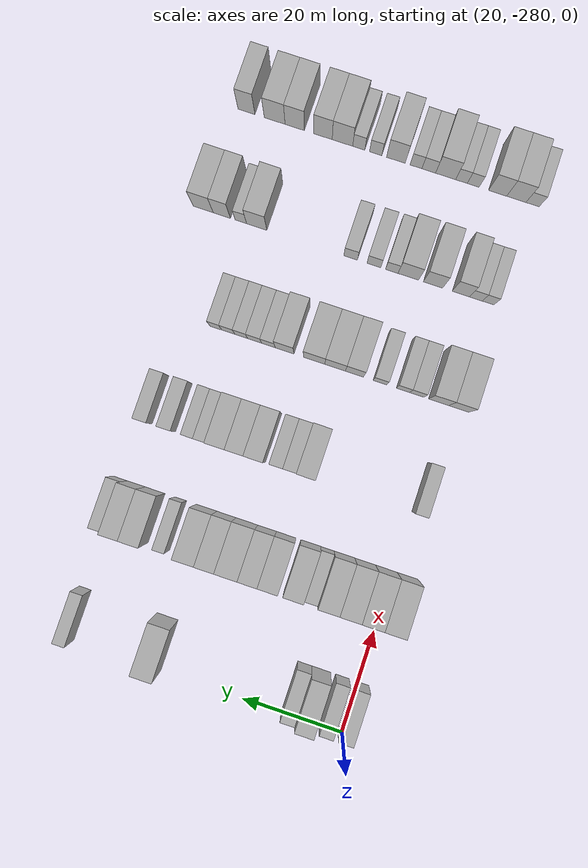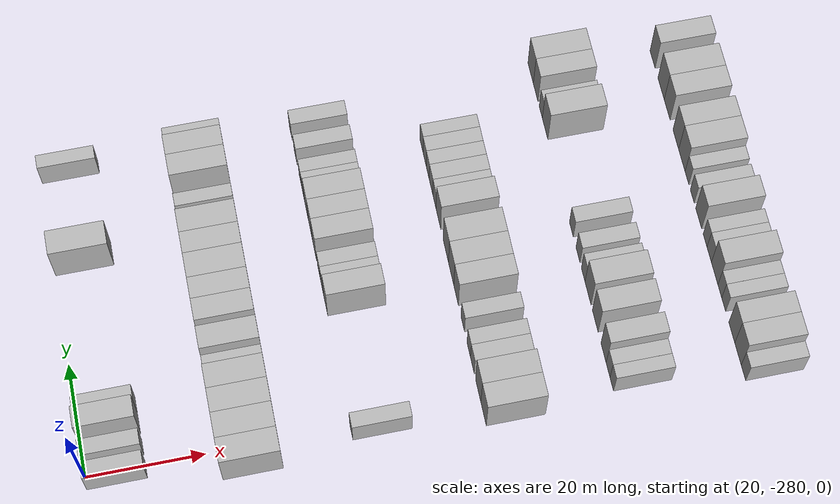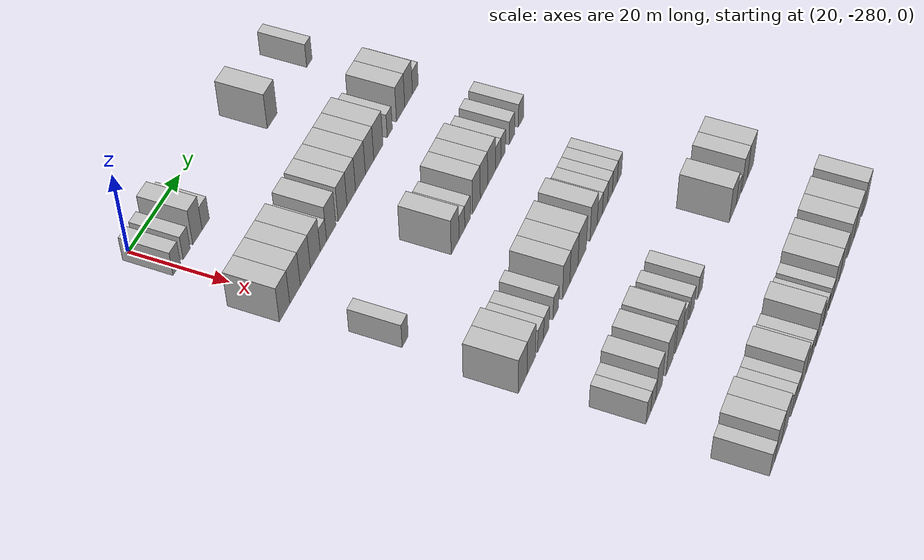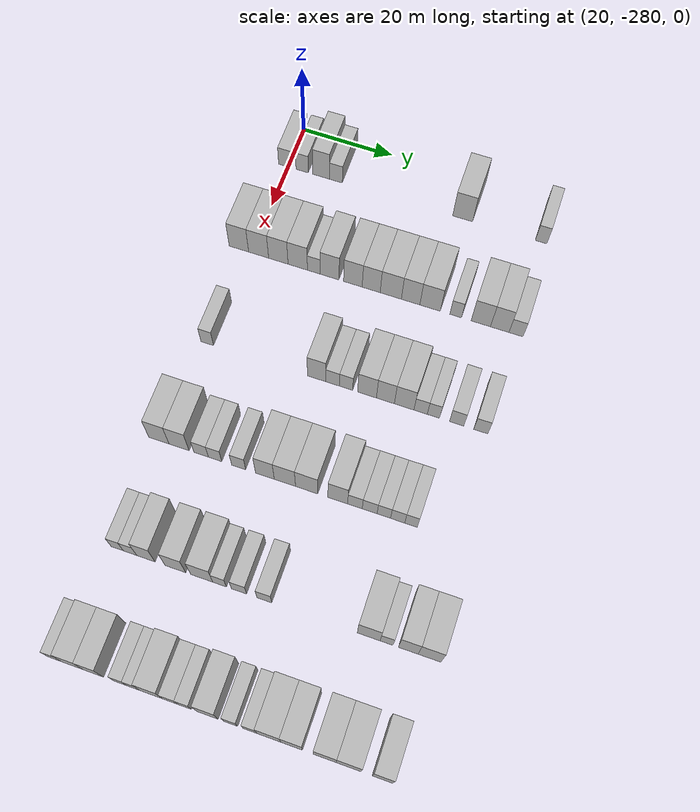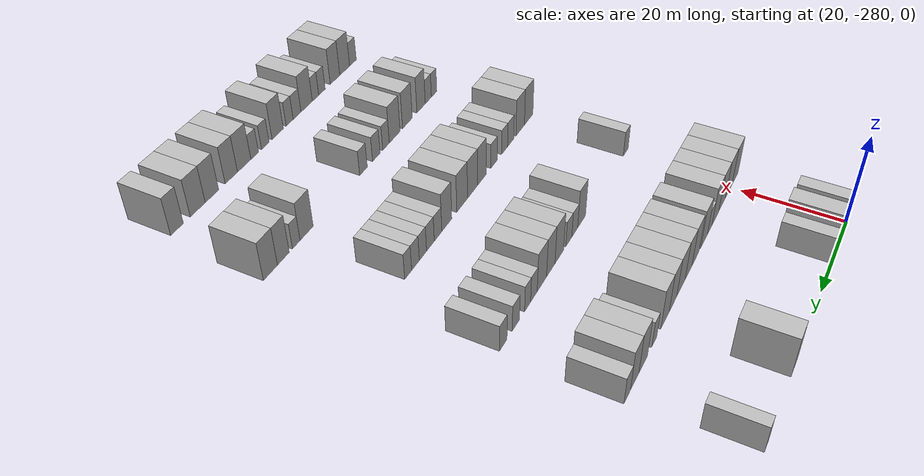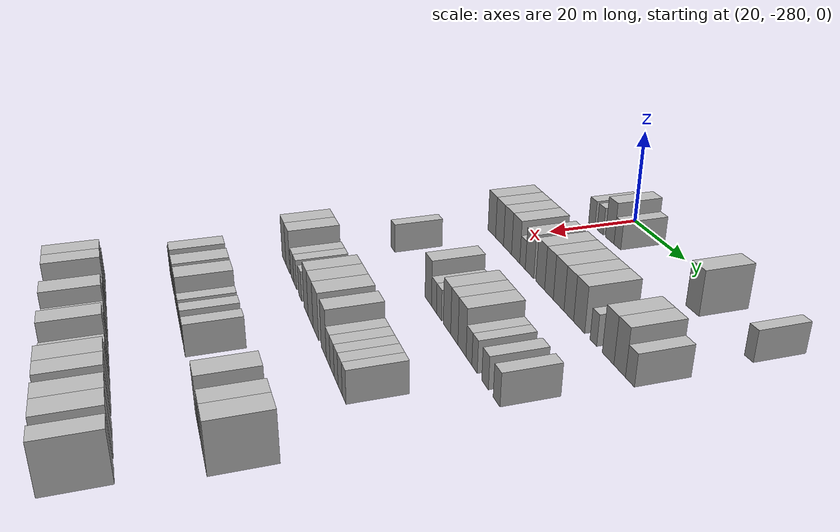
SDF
<sdf version="1.6">
 <world name="default">
  <model name="building_29">
   <static>1</static>
   <pose>25.0000 -280.6863 0 0.000000 0.000000 0.000000</pose>
   <link name="link">
    <pose>0 0 3.00 0 0 0</pose>
    <collision name="collision"><geometry><box><size>10.0000 2.9296 6.0000</size></box></geometry></collision>
    <visual name="visual">
     <cast_shadows>0</cast_shadows>
     <geometry><box><size>10.0000 2.9296 6.0000</size></box></geometry>
     <material>
      <script>
       <uri>model://HANNAS_wall/materials/scripts</uri>
       <uri>model://HANNAS_wall/materials/textures</uri>
       <name>vrc/HANNAS_wall</name>
      </script>
     </material>
    </visual>
   </link>
  </model>
  <model name="building_30">
   <static>1</static>
   <pose>25.0000 -276.8398 0 0.000000 0.000000 0.000000</pose>
   <link name="link">
    <pose>0 0 3.00 0 0 0</pose>
    <collision name="collision"><geometry><box><size>10.0000 2.7635 6.0000</size></box></geometry></collision>
    <visual name="visual">
     <cast_shadows>0</cast_shadows>
     <geometry><box><size>10.0000 2.7635 6.0000</size></box></geometry>
     <material>
      <script>
       <uri>model://HANNAS_wall/materials/scripts</uri>
       <uri>model://HANNAS_wall/materials/textures</uri>
       <name>vrc/HANNAS_wall</name>
      </script>
     </material>
    </visual>
   </link>
  </model>
  <model name="building_31">
   <static>1</static>
   <pose>25.0000 -272.5830 0 0.000000 0.000000 0.000000</pose>
   <link name="link">
    <pose>0 0 4.50 0 0 0</pose>
    <collision name="collision"><geometry><box><size>10.0000 3.7500 9.0000</size></box></geometry></collision>
    <visual name="visual">
     <cast_shadows>0</cast_shadows>
     <geometry><box><size>10.0000 3.7500 9.0000</size></box></geometry>
     <material>
      <script>
       <uri>model://HANNAS_wall/materials/scripts</uri>
       <uri>model://HANNAS_wall/materials/textures</uri>
       <name>vrc/HANNAS_wall</name>
      </script>
     </material>
    </visual>
   </link>
  </model>
  <model name="building_32">
   <static>1</static>
   <pose>25.0000 -269.2646 0 0.000000 0.000000 0.000000</pose>
   <link name="link">
    <pose>0 0 3.00 0 0 0</pose>
    <collision name="collision"><geometry><box><size>10.0000 2.8869 6.0000</size></box></geometry></collision>
    <visual name="visual">
     <cast_shadows>0</cast_shadows>
     <geometry><box><size>10.0000 2.8869 6.0000</size></box></geometry>
     <material>
      <script>
       <uri>model://HANNAS_wall/materials/scripts</uri>
       <uri>model://HANNAS_wall/materials/textures</uri>
       <name>vrc/HANNAS_wall</name>
      </script>
     </material>
    </visual>
   </link>
  </model>
  <model name="building_33">
   <static>1</static>
   <pose>25.0000 -241.3336 0 0.000000 0.000000 0.000000</pose>
   <link name="link">
    <pose>0 0 4.50 0 0 0</pose>
    <collision name="collision"><geometry><box><size>10.0000 4.3250 9.0000</size></box></geometry></collision>
    <visual name="visual">
     <cast_shadows>0</cast_shadows>
     <geometry><box><size>10.0000 4.3250 9.0000</size></box></geometry>
     <material>
      <script>
       <uri>model://HANNAS_wall/materials/scripts</uri>
       <uri>model://HANNAS_wall/materials/textures</uri>
       <name>vrc/HANNAS_wall</name>
      </script>
     </material>
    </visual>
   </link>
  </model>
  <model name="building_34">
   <static>1</static>
   <pose>25.0000 -224.4694 0 0.000000 0.000000 0.000000</pose>
   <link name="link">
    <pose>0 0 3.00 0 0 0</pose>
    <collision name="collision"><geometry><box><size>10.0000 2.4678 6.0000</size></box></geometry></collision>
    <visual name="visual">
     <cast_shadows>0</cast_shadows>
     <geometry><box><size>10.0000 2.4678 6.0000</size></box></geometry>
     <material>
      <script>
       <uri>model://HANNAS_wall/materials/scripts</uri>
       <uri>model://HANNAS_wall/materials/textures</uri>
       <name>vrc/HANNAS_wall</name>
      </script>
     </material>
    </visual>
   </link>
  </model>
  <model name="building_210">
   <static>1</static>
   <pose>47.0000 -282.8100 0 0.000000 0.000000 0.000000</pose>
   <link name="link">
    <pose>0 0 4.50 0 0 0</pose>
    <collision name="collision"><geometry><box><size>10.0000 4.2675 9.0000</size></box></geometry></collision>
    <visual name="visual">
     <cast_shadows>0</cast_shadows>
     <geometry><box><size>10.0000 4.2675 9.0000</size></box></geometry>
     <material>
      <script>
       <uri>model://HANNAS_wall/materials/scripts</uri>
       <uri>model://HANNAS_wall/materials/textures</uri>
       <name>vrc/HANNAS_wall</name>
      </script>
     </material>
    </visual>
   </link>
  </model>
  <model name="building_211">
   <static>1</static>
   <pose>47.0000 -278.4864 0 0.000000 0.000000 0.000000</pose>
   <link name="link">
    <pose>0 0 4.50 0 0 0</pose>
    <collision name="collision"><geometry><box><size>10.0000 4.3796 9.0000</size></box></geometry></collision>
    <visual name="visual">
     <cast_shadows>0</cast_shadows>
     <geometry><box><size>10.0000 4.3796 9.0000</size></box></geometry>
     <material>
      <script>
       <uri>model://HANNAS_wall/materials/scripts</uri>
       <uri>model://HANNAS_wall/materials/textures</uri>
       <name>vrc/HANNAS_wall</name>
      </script>
     </material>
    </visual>
   </link>
  </model>
  <model name="building_212">
   <static>1</static>
   <pose>47.0000 -274.1787 0 0.000000 0.000000 0.000000</pose>
   <link name="link">
    <pose>0 0 4.50 0 0 0</pose>
    <collision name="collision"><geometry><box><size>10.0000 4.2359 9.0000</size></box></geometry></collision>
    <visual name="visual">
     <cast_shadows>0</cast_shadows>
     <geometry><box><size>10.0000 4.2359 9.0000</size></box></geometry>
     <material>
      <script>
       <uri>model://HANNAS_wall/materials/scripts</uri>
       <uri>model://HANNAS_wall/materials/textures</uri>
       <name>vrc/HANNAS_wall</name>
      </script>
     </material>
    </visual>
   </link>
  </model>
  <model name="building_213">
   <static>1</static>
   <pose>47.0000 -269.9558 0 0.000000 0.000000 0.000000</pose>
   <link name="link">
    <pose>0 0 4.50 0 0 0</pose>
    <collision name="collision"><geometry><box><size>10.0000 4.2099 9.0000</size></box></geometry></collision>
    <visual name="visual">
     <cast_shadows>0</cast_shadows>
     <geometry><box><size>10.0000 4.2099 9.0000</size></box></geometry>
     <material>
      <script>
       <uri>model://HANNAS_wall/materials/scripts</uri>
       <uri>model://HANNAS_wall/materials/textures</uri>
       <name>vrc/HANNAS_wall</name>
      </script>
     </material>
    </visual>
   </link>
  </model>
  <model name="building_214">
   <static>1</static>
   <pose>47.0000 -266.4868 0 0.000000 0.000000 0.000000</pose>
   <link name="link">
    <pose>0 0 3.00 0 0 0</pose>
    <collision name="collision"><geometry><box><size>10.0000 2.7280 6.0000</size></box></geometry></collision>
    <visual name="visual">
     <cast_shadows>0</cast_shadows>
     <geometry><box><size>10.0000 2.7280 6.0000</size></box></geometry>
     <material>
      <script>
       <uri>model://HANNAS_wall/materials/scripts</uri>
       <uri>model://HANNAS_wall/materials/textures</uri>
       <name>vrc/HANNAS_wall</name>
      </script>
     </material>
    </visual>
   </link>
  </model>
  <model name="building_215">
   <static>1</static>
   <pose>47.0000 -263.0918 0 0.000000 0.000000 0.000000</pose>
   <link name="link">
    <pose>0 0 4.50 0 0 0</pose>
    <collision name="collision"><geometry><box><size>10.0000 4.0620 9.0000</size></box></geometry></collision>
    <visual name="visual">
     <cast_shadows>0</cast_shadows>
     <geometry><box><size>10.0000 4.0620 9.0000</size></box></geometry>
     <material>
      <script>
       <uri>model://HANNAS_wall/materials/scripts</uri>
       <uri>model://HANNAS_wall/materials/textures</uri>
       <name>vrc/HANNAS_wall</name>
      </script>
     </material>
    </visual>
   </link>
  </model>
  <model name="building_216">
   <static>1</static>
   <pose>47.0000 -258.0781 0 0.000000 0.000000 0.000000</pose>
   <link name="link">
    <pose>0 0 4.50 0 0 0</pose>
    <collision name="collision"><geometry><box><size>10.0000 3.9655 9.0000</size></box></geometry></collision>
    <visual name="visual">
     <cast_shadows>0</cast_shadows>
     <geometry><box><size>10.0000 3.9655 9.0000</size></box></geometry>
     <material>
      <script>
       <uri>model://HANNAS_wall/materials/scripts</uri>
       <uri>model://HANNAS_wall/materials/textures</uri>
       <name>vrc/HANNAS_wall</name>
      </script>
     </material>
    </visual>
   </link>
  </model>
  <model name="building_217">
   <static>1</static>
   <pose>47.0000 -254.1682 0 0.000000 0.000000 0.000000</pose>
   <link name="link">
    <pose>0 0 4.50 0 0 0</pose>
    <collision name="collision"><geometry><box><size>10.0000 3.8542 9.0000</size></box></geometry></collision>
    <visual name="visual">
     <cast_shadows>0</cast_shadows>
     <geometry><box><size>10.0000 3.8542 9.0000</size></box></geometry>
     <material>
      <script>
       <uri>model://HANNAS_wall/materials/scripts</uri>
       <uri>model://HANNAS_wall/materials/textures</uri>
       <name>vrc/HANNAS_wall</name>
      </script>
     </material>
    </visual>
   </link>
  </model>
  <model name="building_218">
   <static>1</static>
   <pose>47.0000 -249.9914 0 0.000000 0.000000 0.000000</pose>
   <link name="link">
    <pose>0 0 4.50 0 0 0</pose>
    <collision name="collision"><geometry><box><size>10.0000 4.4993 9.0000</size></box></geometry></collision>
    <visual name="visual">
     <cast_shadows>0</cast_shadows>
     <geometry><box><size>10.0000 4.4993 9.0000</size></box></geometry>
     <material>
      <script>
       <uri>model://HANNAS_wall/materials/scripts</uri>
       <uri>model://HANNAS_wall/materials/textures</uri>
       <name>vrc/HANNAS_wall</name>
      </script>
     </material>
    </visual>
   </link>
  </model>
  <model name="building_219">
   <static>1</static>
   <pose>47.0000 -245.7836 0 0.000000 0.000000 0.000000</pose>
   <link name="link">
    <pose>0 0 4.50 0 0 0</pose>
    <collision name="collision"><geometry><box><size>10.0000 3.9164 9.0000</size></box></geometry></collision>
    <visual name="visual">
     <cast_shadows>0</cast_shadows>
     <geometry><box><size>10.0000 3.9164 9.0000</size></box></geometry>
     <material>
      <script>
       <uri>model://HANNAS_wall/materials/scripts</uri>
       <uri>model://HANNAS_wall/materials/textures</uri>
       <name>vrc/HANNAS_wall</name>
      </script>
     </material>
    </visual>
   </link>
  </model>
  <model name="building_220">
   <static>1</static>
   <pose>47.0000 -241.6746 0 0.000000 0.000000 0.000000</pose>
   <link name="link">
    <pose>0 0 4.50 0 0 0</pose>
    <collision name="collision"><geometry><box><size>10.0000 4.3015 9.0000</size></box></geometry></collision>
    <visual name="visual">
     <cast_shadows>0</cast_shadows>
     <geometry><box><size>10.0000 4.3015 9.0000</size></box></geometry>
     <material>
      <script>
       <uri>model://HANNAS_wall/materials/scripts</uri>
       <uri>model://HANNAS_wall/materials/textures</uri>
       <name>vrc/HANNAS_wall</name>
      </script>
     </material>
    </visual>
   </link>
  </model>
  <model name="building_221">
   <static>1</static>
   <pose>47.0000 -236.3030 0 0.000000 0.000000 0.000000</pose>
   <link name="link">
    <pose>0 0 3.00 0 0 0</pose>
    <collision name="collision"><geometry><box><size>10.0000 2.4418 6.0000</size></box></geometry></collision>
    <visual name="visual">
     <cast_shadows>0</cast_shadows>
     <geometry><box><size>10.0000 2.4418 6.0000</size></box></geometry>
     <material>
      <script>
       <uri>model://HANNAS_wall/materials/scripts</uri>
       <uri>model://HANNAS_wall/materials/textures</uri>
       <name>vrc/HANNAS_wall</name>
      </script>
     </material>
    </visual>
   </link>
  </model>
  <model name="building_222">
   <static>1</static>
   <pose>47.0000 -231.0691 0 0.000000 0.000000 0.000000</pose>
   <link name="link">
    <pose>0 0 4.50 0 0 0</pose>
    <collision name="collision"><geometry><box><size>10.0000 4.0259 9.0000</size></box></geometry></collision>
    <visual name="visual">
     <cast_shadows>0</cast_shadows>
     <geometry><box><size>10.0000 4.0259 9.0000</size></box></geometry>
     <material>
      <script>
       <uri>model://HANNAS_wall/materials/scripts</uri>
       <uri>model://HANNAS_wall/materials/textures</uri>
       <name>vrc/HANNAS_wall</name>
      </script>
     </material>
    </visual>
   </link>
  </model>
  <model name="building_223">
   <static>1</static>
   <pose>47.0000 -227.1420 0 0.000000 0.000000 0.000000</pose>
   <link name="link">
    <pose>0 0 4.50 0 0 0</pose>
    <collision name="collision"><geometry><box><size>10.0000 3.8282 9.0000</size></box></geometry></collision>
    <visual name="visual">
     <cast_shadows>0</cast_shadows>
     <geometry><box><size>10.0000 3.8282 9.0000</size></box></geometry>
     <material>
      <script>
       <uri>model://HANNAS_wall/materials/scripts</uri>
       <uri>model://HANNAS_wall/materials/textures</uri>
       <name>vrc/HANNAS_wall</name>
      </script>
     </material>
    </visual>
   </link>
  </model>
  <model name="building_224">
   <static>1</static>
   <pose>47.0000 -223.7814 0 0.000000 0.000000 0.000000</pose>
   <link name="link">
    <pose>0 0 3.00 0 0 0</pose>
    <collision name="collision"><geometry><box><size>10.0000 2.8931 6.0000</size></box></geometry></collision>
    <visual name="visual">
     <cast_shadows>0</cast_shadows>
     <geometry><box><size>10.0000 2.8931 6.0000</size></box></geometry>
     <material>
      <script>
       <uri>model://HANNAS_wall/materials/scripts</uri>
       <uri>model://HANNAS_wall/materials/textures</uri>
       <name>vrc/HANNAS_wall</name>
      </script>
     </material>
    </visual>
   </link>
  </model>
  <model name="building_400">
   <static>1</static>
   <pose>69.0000 -281.1554 0 0.000000 0.000000 0.000000</pose>
   <link name="link">
    <pose>0 0 3.00 0 0 0</pose>
    <collision name="collision"><geometry><box><size>10.0000 2.6811 6.0000</size></box></geometry></collision>
    <visual name="visual">
     <cast_shadows>0</cast_shadows>
     <geometry><box><size>10.0000 2.6811 6.0000</size></box></geometry>
     <material>
      <script>
       <uri>model://HANNAS_wall/materials/scripts</uri>
       <uri>model://HANNAS_wall/materials/textures</uri>
       <name>vrc/HANNAS_wall</name>
      </script>
     </material>
    </visual>
   </link>
  </model>
  <model name="building_401">
   <static>1</static>
   <pose>69.0000 -258.1409 0 0.000000 0.000000 0.000000</pose>
   <link name="link">
    <pose>0 0 4.50 0 0 0</pose>
    <collision name="collision"><geometry><box><size>10.0000 3.7827 9.0000</size></box></geometry></collision>
    <visual name="visual">
     <cast_shadows>0</cast_shadows>
     <geometry><box><size>10.0000 3.7827 9.0000</size></box></geometry>
     <material>
      <script>
       <uri>model://HANNAS_wall/materials/scripts</uri>
       <uri>model://HANNAS_wall/materials/textures</uri>
       <name>vrc/HANNAS_wall</name>
      </script>
     </material>
    </visual>
   </link>
  </model>
  <model name="building_402">
   <static>1</static>
   <pose>69.0000 -254.8541 0 0.000000 0.000000 0.000000</pose>
   <link name="link">
    <pose>0 0 3.00 0 0 0</pose>
    <collision name="collision"><geometry><box><size>10.0000 2.7908 6.0000</size></box></geometry></collision>
    <visual name="visual">
     <cast_shadows>0</cast_shadows>
     <geometry><box><size>10.0000 2.7908 6.0000</size></box></geometry>
     <material>
      <script>
       <uri>model://HANNAS_wall/materials/scripts</uri>
       <uri>model://HANNAS_wall/materials/textures</uri>
       <name>vrc/HANNAS_wall</name>
      </script>
     </material>
    </visual>
   </link>
  </model>
  <model name="building_403">
   <static>1</static>
   <pose>69.0000 -252.0815 0 0.000000 0.000000 0.000000</pose>
   <link name="link">
    <pose>0 0 3.00 0 0 0</pose>
    <collision name="collision"><geometry><box><size>10.0000 2.7545 6.0000</size></box></geometry></collision>
    <visual name="visual">
     <cast_shadows>0</cast_shadows>
     <geometry><box><size>10.0000 2.7545 6.0000</size></box></geometry>
     <material>
      <script>
       <uri>model://HANNAS_wall/materials/scripts</uri>
       <uri>model://HANNAS_wall/materials/textures</uri>
       <name>vrc/HANNAS_wall</name>
      </script>
     </material>
    </visual>
   </link>
  </model>
  <model name="building_404">
   <static>1</static>
   <pose>69.0000 -247.7672 0 0.000000 0.000000 0.000000</pose>
   <link name="link">
    <pose>0 0 4.50 0 0 0</pose>
    <collision name="collision"><geometry><box><size>10.0000 3.8741 9.0000</size></box></geometry></collision>
    <visual name="visual">
     <cast_shadows>0</cast_shadows>
     <geometry><box><size>10.0000 3.8741 9.0000</size></box></geometry>
     <material>
      <script>
       <uri>model://HANNAS_wall/materials/scripts</uri>
       <uri>model://HANNAS_wall/materials/textures</uri>
       <name>vrc/HANNAS_wall</name>
      </script>
     </material>
    </visual>
   </link>
  </model>
  <model name="building_405">
   <static>1</static>
   <pose>69.0000 -243.9930 0 0.000000 0.000000 0.000000</pose>
   <link name="link">
    <pose>0 0 4.50 0 0 0</pose>
    <collision name="collision"><geometry><box><size>10.0000 3.6743 9.0000</size></box></geometry></collision>
    <visual name="visual">
     <cast_shadows>0</cast_shadows>
     <geometry><box><size>10.0000 3.6743 9.0000</size></box></geometry>
     <material>
      <script>
       <uri>model://HANNAS_wall/materials/scripts</uri>
       <uri>model://HANNAS_wall/materials/textures</uri>
       <name>vrc/HANNAS_wall</name>
      </script>
     </material>
    </visual>
   </link>
  </model>
  <model name="building_406">
   <static>1</static>
   <pose>69.0000 -240.1670 0 0.000000 0.000000 0.000000</pose>
   <link name="link">
    <pose>0 0 4.50 0 0 0</pose>
    <collision name="collision"><geometry><box><size>10.0000 3.9777 9.0000</size></box></geometry></collision>
    <visual name="visual">
     <cast_shadows>0</cast_shadows>
     <geometry><box><size>10.0000 3.9777 9.0000</size></box></geometry>
     <material>
      <script>
       <uri>model://HANNAS_wall/materials/scripts</uri>
       <uri>model://HANNAS_wall/materials/textures</uri>
       <name>vrc/HANNAS_wall</name>
      </script>
     </material>
    </visual>
   </link>
  </model>
  <model name="building_407">
   <static>1</static>
   <pose>69.0000 -236.8224 0 0.000000 0.000000 0.000000</pose>
   <link name="link">
    <pose>0 0 3.00 0 0 0</pose>
    <collision name="collision"><geometry><box><size>10.0000 2.7115 6.0000</size></box></geometry></collision>
    <visual name="visual">
     <cast_shadows>0</cast_shadows>
     <geometry><box><size>10.0000 2.7115 6.0000</size></box></geometry>
     <material>
      <script>
       <uri>model://HANNAS_wall/materials/scripts</uri>
       <uri>model://HANNAS_wall/materials/textures</uri>
       <name>vrc/HANNAS_wall</name>
      </script>
     </material>
    </visual>
   </link>
  </model>
  <model name="building_408">
   <static>1</static>
   <pose>69.0000 -234.2362 0 0.000000 0.000000 0.000000</pose>
   <link name="link">
    <pose>0 0 3.00 0 0 0</pose>
    <collision name="collision"><geometry><box><size>10.0000 2.4609 6.0000</size></box></geometry></collision>
    <visual name="visual">
     <cast_shadows>0</cast_shadows>
     <geometry><box><size>10.0000 2.4609 6.0000</size></box></geometry>
     <material>
      <script>
       <uri>model://HANNAS_wall/materials/scripts</uri>
       <uri>model://HANNAS_wall/materials/textures</uri>
       <name>vrc/HANNAS_wall</name>
      </script>
     </material>
    </visual>
   </link>
  </model>
  <model name="building_409">
   <static>1</static>
   <pose>69.0000 -229.5660 0 0.000000 0.000000 0.000000</pose>
   <link name="link">
    <pose>0 0 3.00 0 0 0</pose>
    <collision name="collision"><geometry><box><size>10.0000 2.8795 6.0000</size></box></geometry></collision>
    <visual name="visual">
     <cast_shadows>0</cast_shadows>
     <geometry><box><size>10.0000 2.8795 6.0000</size></box></geometry>
     <material>
      <script>
       <uri>model://HANNAS_wall/materials/scripts</uri>
       <uri>model://HANNAS_wall/materials/textures</uri>
       <name>vrc/HANNAS_wall</name>
      </script>
     </material>
    </visual>
   </link>
  </model>
  <model name="building_410">
   <static>1</static>
   <pose>69.0000 -224.7170 0 0.000000 0.000000 0.000000</pose>
   <link name="link">
    <pose>0 0 3.00 0 0 0</pose>
    <collision name="collision"><geometry><box><size>10.0000 2.8186 6.0000</size></box></geometry></collision>
    <visual name="visual">
     <cast_shadows>0</cast_shadows>
     <geometry><box><size>10.0000 2.8186 6.0000</size></box></geometry>
     <material>
      <script>
       <uri>model://HANNAS_wall/materials/scripts</uri>
       <uri>model://HANNAS_wall/materials/textures</uri>
       <name>vrc/HANNAS_wall</name>
      </script>
     </material>
    </visual>
   </link>
  </model>
  <model name="building_593">
   <static>1</static>
   <pose>91.0000 -282.4196 0 0.000000 0.000000 0.000000</pose>
   <link name="link">
    <pose>0 0 4.50 0 0 0</pose>
    <collision name="collision"><geometry><box><size>10.0000 4.1827 9.0000</size></box></geometry></collision>
    <visual name="visual">
     <cast_shadows>0</cast_shadows>
     <geometry><box><size>10.0000 4.1827 9.0000</size></box></geometry>
     <material>
      <script>
       <uri>model://HANNAS_wall/materials/scripts</uri>
       <uri>model://HANNAS_wall/materials/textures</uri>
       <name>vrc/HANNAS_wall</name>
      </script>
     </material>
    </visual>
   </link>
  </model>
  <model name="building_594">
   <static>1</static>
   <pose>91.0000 -278.2609 0 0.000000 0.000000 0.000000</pose>
   <link name="link">
    <pose>0 0 4.50 0 0 0</pose>
    <collision name="collision"><geometry><box><size>10.0000 4.1348 9.0000</size></box></geometry></collision>
    <visual name="visual">
     <cast_shadows>0</cast_shadows>
     <geometry><box><size>10.0000 4.1348 9.0000</size></box></geometry>
     <material>
      <script>
       <uri>model://HANNAS_wall/materials/scripts</uri>
       <uri>model://HANNAS_wall/materials/textures</uri>
       <name>vrc/HANNAS_wall</name>
      </script>
     </material>
    </visual>
   </link>
  </model>
  <model name="building_595">
   <static>1</static>
   <pose>91.0000 -273.7159 0 0.000000 0.000000 0.000000</pose>
   <link name="link">
    <pose>0 0 3.00 0 0 0</pose>
    <collision name="collision"><geometry><box><size>10.0000 2.9551 6.0000</size></box></geometry></collision>
    <visual name="visual">
     <cast_shadows>0</cast_shadows>
     <geometry><box><size>10.0000 2.9551 6.0000</size></box></geometry>
     <material>
      <script>
       <uri>model://HANNAS_wall/materials/scripts</uri>
       <uri>model://HANNAS_wall/materials/textures</uri>
       <name>vrc/HANNAS_wall</name>
      </script>
     </material>
    </visual>
   </link>
  </model>
  <model name="building_596">
   <static>1</static>
   <pose>91.0000 -270.8714 0 0.000000 0.000000 0.000000</pose>
   <link name="link">
    <pose>0 0 3.00 0 0 0</pose>
    <collision name="collision"><geometry><box><size>10.0000 2.7340 6.0000</size></box></geometry></collision>
    <visual name="visual">
     <cast_shadows>0</cast_shadows>
     <geometry><box><size>10.0000 2.7340 6.0000</size></box></geometry>
     <material>
      <script>
       <uri>model://HANNAS_wall/materials/scripts</uri>
       <uri>model://HANNAS_wall/materials/textures</uri>
       <name>vrc/HANNAS_wall</name>
      </script>
     </material>
    </visual>
   </link>
  </model>
  <model name="building_597">
   <static>1</static>
   <pose>91.0000 -266.0819 0 0.000000 0.000000 0.000000</pose>
   <link name="link">
    <pose>0 0 3.00 0 0 0</pose>
    <collision name="collision"><geometry><box><size>10.0000 2.8449 6.0000</size></box></geometry></collision>
    <visual name="visual">
     <cast_shadows>0</cast_shadows>
     <geometry><box><size>10.0000 2.8449 6.0000</size></box></geometry>
     <material>
      <script>
       <uri>model://HANNAS_wall/materials/scripts</uri>
       <uri>model://HANNAS_wall/materials/textures</uri>
       <name>vrc/HANNAS_wall</name>
      </script>
     </material>
    </visual>
   </link>
  </model>
  <model name="building_598">
   <static>1</static>
   <pose>91.0000 -260.7732 0 0.000000 0.000000 0.000000</pose>
   <link name="link">
    <pose>0 0 4.50 0 0 0</pose>
    <collision name="collision"><geometry><box><size>10.0000 3.7725 9.0000</size></box></geometry></collision>
    <visual name="visual">
     <cast_shadows>0</cast_shadows>
     <geometry><box><size>10.0000 3.7725 9.0000</size></box></geometry>
     <material>
      <script>
       <uri>model://HANNAS_wall/materials/scripts</uri>
       <uri>model://HANNAS_wall/materials/textures</uri>
       <name>vrc/HANNAS_wall</name>
      </script>
     </material>
    </visual>
   </link>
  </model>
  <model name="building_599">
   <static>1</static>
   <pose>91.0000 -256.7583 0 0.000000 0.000000 0.000000</pose>
   <link name="link">
    <pose>0 0 4.50 0 0 0</pose>
    <collision name="collision"><geometry><box><size>10.0000 4.2572 9.0000</size></box></geometry></collision>
    <visual name="visual">
     <cast_shadows>0</cast_shadows>
     <geometry><box><size>10.0000 4.2572 9.0000</size></box></geometry>
     <material>
      <script>
       <uri>model://HANNAS_wall/materials/scripts</uri>
       <uri>model://HANNAS_wall/materials/textures</uri>
       <name>vrc/HANNAS_wall</name>
      </script>
     </material>
    </visual>
   </link>
  </model>
  <model name="building_600">
   <static>1</static>
   <pose>91.0000 -252.4077 0 0.000000 0.000000 0.000000</pose>
   <link name="link">
    <pose>0 0 4.50 0 0 0</pose>
    <collision name="collision"><geometry><box><size>10.0000 4.4441 9.0000</size></box></geometry></collision>
    <visual name="visual">
     <cast_shadows>0</cast_shadows>
     <geometry><box><size>10.0000 4.4441 9.0000</size></box></geometry>
     <material>
      <script>
       <uri>model://HANNAS_wall/materials/scripts</uri>
       <uri>model://HANNAS_wall/materials/textures</uri>
       <name>vrc/HANNAS_wall</name>
      </script>
     </material>
    </visual>
   </link>
  </model>
  <model name="building_601">
   <static>1</static>
   <pose>91.0000 -246.2334 0 0.000000 0.000000 0.000000</pose>
   <link name="link">
    <pose>0 0 4.50 0 0 0</pose>
    <collision name="collision"><geometry><box><size>10.0000 3.9045 9.0000</size></box></geometry></collision>
    <visual name="visual">
     <cast_shadows>0</cast_shadows>
     <geometry><box><size>10.0000 3.9045 9.0000</size></box></geometry>
     <material>
      <script>
       <uri>model://HANNAS_wall/materials/scripts</uri>
       <uri>model://HANNAS_wall/materials/textures</uri>
       <name>vrc/HANNAS_wall</name>
      </script>
     </material>
    </visual>
   </link>
  </model>
  <model name="building_602">
   <static>1</static>
   <pose>91.0000 -242.8386 0 0.000000 0.000000 0.000000</pose>
   <link name="link">
    <pose>0 0 3.00 0 0 0</pose>
    <collision name="collision"><geometry><box><size>10.0000 2.8850 6.0000</size></box></geometry></collision>
    <visual name="visual">
     <cast_shadows>0</cast_shadows>
     <geometry><box><size>10.0000 2.8850 6.0000</size></box></geometry>
     <material>
      <script>
       <uri>model://HANNAS_wall/materials/scripts</uri>
       <uri>model://HANNAS_wall/materials/textures</uri>
       <name>vrc/HANNAS_wall</name>
      </script>
     </material>
    </visual>
   </link>
  </model>
  <model name="building_603">
   <static>1</static>
   <pose>91.0000 -239.9399 0 0.000000 0.000000 0.000000</pose>
   <link name="link">
    <pose>0 0 3.00 0 0 0</pose>
    <collision name="collision"><geometry><box><size>10.0000 2.9125 6.0000</size></box></geometry></collision>
    <visual name="visual">
     <cast_shadows>0</cast_shadows>
     <geometry><box><size>10.0000 2.9125 6.0000</size></box></geometry>
     <material>
      <script>
       <uri>model://HANNAS_wall/materials/scripts</uri>
       <uri>model://HANNAS_wall/materials/textures</uri>
       <name>vrc/HANNAS_wall</name>
      </script>
     </material>
    </visual>
   </link>
  </model>
  <model name="building_604">
   <static>1</static>
   <pose>91.0000 -237.1628 0 0.000000 0.000000 0.000000</pose>
   <link name="link">
    <pose>0 0 3.00 0 0 0</pose>
    <collision name="collision"><geometry><box><size>10.0000 2.6418 6.0000</size></box></geometry></collision>
    <visual name="visual">
     <cast_shadows>0</cast_shadows>
     <geometry><box><size>10.0000 2.6418 6.0000</size></box></geometry>
     <material>
      <script>
       <uri>model://HANNAS_wall/materials/scripts</uri>
       <uri>model://HANNAS_wall/materials/textures</uri>
       <name>vrc/HANNAS_wall</name>
      </script>
     </material>
    </visual>
   </link>
  </model>
  <model name="building_605">
   <static>1</static>
   <pose>91.0000 -234.4584 0 0.000000 0.000000 0.000000</pose>
   <link name="link">
    <pose>0 0 3.00 0 0 0</pose>
    <collision name="collision"><geometry><box><size>10.0000 2.7670 6.0000</size></box></geometry></collision>
    <visual name="visual">
     <cast_shadows>0</cast_shadows>
     <geometry><box><size>10.0000 2.7670 6.0000</size></box></geometry>
     <material>
      <script>
       <uri>model://HANNAS_wall/materials/scripts</uri>
       <uri>model://HANNAS_wall/materials/textures</uri>
       <name>vrc/HANNAS_wall</name>
      </script>
     </material>
    </visual>
   </link>
  </model>
  <model name="building_606">
   <static>1</static>
   <pose>91.0000 -231.8395 0 0.000000 0.000000 0.000000</pose>
   <link name="link">
    <pose>0 0 3.00 0 0 0</pose>
    <collision name="collision"><geometry><box><size>10.0000 2.4708 6.0000</size></box></geometry></collision>
    <visual name="visual">
     <cast_shadows>0</cast_shadows>
     <geometry><box><size>10.0000 2.4708 6.0000</size></box></geometry>
     <material>
      <script>
       <uri>model://HANNAS_wall/materials/scripts</uri>
       <uri>model://HANNAS_wall/materials/textures</uri>
       <name>vrc/HANNAS_wall</name>
      </script>
     </material>
    </visual>
   </link>
  </model>
  <model name="building_777">
   <static>1</static>
   <pose>113.0000 -281.6016 0 0.000000 0.000000 0.000000</pose>
   <link name="link">
    <pose>0 0 3.00 0 0 0</pose>
    <collision name="collision"><geometry><box><size>10.0000 2.4433 6.0000</size></box></geometry></collision>
    <visual name="visual">
     <cast_shadows>0</cast_shadows>
     <geometry><box><size>10.0000 2.4433 6.0000</size></box></geometry>
     <material>
      <script>
       <uri>model://HANNAS_wall/materials/scripts</uri>
       <uri>model://HANNAS_wall/materials/textures</uri>
       <name>vrc/HANNAS_wall</name>
      </script>
     </material>
    </visual>
   </link>
  </model>
  <model name="building_778">
   <static>1</static>
   <pose>113.0000 -279.0371 0 0.000000 0.000000 0.000000</pose>
   <link name="link">
    <pose>0 0 3.00 0 0 0</pose>
    <collision name="collision"><geometry><box><size>10.0000 2.6856 6.0000</size></box></geometry></collision>
    <visual name="visual">
     <cast_shadows>0</cast_shadows>
     <geometry><box><size>10.0000 2.6856 6.0000</size></box></geometry>
     <material>
      <script>
       <uri>model://HANNAS_wall/materials/scripts</uri>
       <uri>model://HANNAS_wall/materials/textures</uri>
       <name>vrc/HANNAS_wall</name>
      </script>
     </material>
    </visual>
   </link>
  </model>
  <model name="building_779">
   <static>1</static>
   <pose>113.0000 -275.8887 0 0.000000 0.000000 0.000000</pose>
   <link name="link">
    <pose>0 0 4.50 0 0 0</pose>
    <collision name="collision"><geometry><box><size>10.0000 3.6112 9.0000</size></box></geometry></collision>
    <visual name="visual">
     <cast_shadows>0</cast_shadows>
     <geometry><box><size>10.0000 3.6112 9.0000</size></box></geometry>
     <material>
      <script>
       <uri>model://HANNAS_wall/materials/scripts</uri>
       <uri>model://HANNAS_wall/materials/textures</uri>
       <name>vrc/HANNAS_wall</name>
      </script>
     </material>
    </visual>
   </link>
  </model>
  <model name="building_780">
   <static>1</static>
   <pose>113.0000 -270.0558 0 0.000000 0.000000 0.000000</pose>
   <link name="link">
    <pose>0 0 4.50 0 0 0</pose>
    <collision name="collision"><geometry><box><size>10.0000 4.0547 9.0000</size></box></geometry></collision>
    <visual name="visual">
     <cast_shadows>0</cast_shadows>
     <geometry><box><size>10.0000 4.0547 9.0000</size></box></geometry>
     <material>
      <script>
       <uri>model://HANNAS_wall/materials/scripts</uri>
       <uri>model://HANNAS_wall/materials/textures</uri>
       <name>vrc/HANNAS_wall</name>
      </script>
     </material>
    </visual>
   </link>
  </model>
  <model name="building_781">
   <static>1</static>
   <pose>113.0000 -264.8603 0 0.000000 0.000000 0.000000</pose>
   <link name="link">
    <pose>0 0 4.50 0 0 0</pose>
    <collision name="collision"><geometry><box><size>10.0000 4.3363 9.0000</size></box></geometry></collision>
    <visual name="visual">
     <cast_shadows>0</cast_shadows>
     <geometry><box><size>10.0000 4.3363 9.0000</size></box></geometry>
     <material>
      <script>
       <uri>model://HANNAS_wall/materials/scripts</uri>
       <uri>model://HANNAS_wall/materials/textures</uri>
       <name>vrc/HANNAS_wall</name>
      </script>
     </material>
    </visual>
   </link>
  </model>
  <model name="building_782">
   <static>1</static>
   <pose>113.0000 -261.3780 0 0.000000 0.000000 0.000000</pose>
   <link name="link">
    <pose>0 0 3.00 0 0 0</pose>
    <collision name="collision"><geometry><box><size>10.0000 2.6283 6.0000</size></box></geometry></collision>
    <visual name="visual">
     <cast_shadows>0</cast_shadows>
     <geometry><box><size>10.0000 2.6283 6.0000</size></box></geometry>
     <material>
      <script>
       <uri>model://HANNAS_wall/materials/scripts</uri>
       <uri>model://HANNAS_wall/materials/textures</uri>
       <name>vrc/HANNAS_wall</name>
      </script>
     </material>
    </visual>
   </link>
  </model>
  <model name="building_783">
   <static>1</static>
   <pose>113.0000 -257.6090 0 0.000000 0.000000 0.000000</pose>
   <link name="link">
    <pose>0 0 3.00 0 0 0</pose>
    <collision name="collision"><geometry><box><size>10.0000 2.9098 6.0000</size></box></geometry></collision>
    <visual name="visual">
     <cast_shadows>0</cast_shadows>
     <geometry><box><size>10.0000 2.9098 6.0000</size></box></geometry>
     <material>
      <script>
       <uri>model://HANNAS_wall/materials/scripts</uri>
       <uri>model://HANNAS_wall/materials/textures</uri>
       <name>vrc/HANNAS_wall</name>
      </script>
     </material>
    </visual>
   </link>
  </model>
  <model name="building_784">
   <static>1</static>
   <pose>113.0000 -252.7259 0 0.000000 0.000000 0.000000</pose>
   <link name="link">
    <pose>0 0 3.00 0 0 0</pose>
    <collision name="collision"><geometry><box><size>10.0000 2.8564 6.0000</size></box></geometry></collision>
    <visual name="visual">
     <cast_shadows>0</cast_shadows>
     <geometry><box><size>10.0000 2.8564 6.0000</size></box></geometry>
     <material>
      <script>
       <uri>model://HANNAS_wall/materials/scripts</uri>
       <uri>model://HANNAS_wall/materials/textures</uri>
       <name>vrc/HANNAS_wall</name>
      </script>
     </material>
    </visual>
   </link>
  </model>
  <model name="building_785">
   <static>1</static>
   <pose>113.0000 -232.8478 0 0.000000 0.000000 0.000000</pose>
   <link name="link">
    <pose>0 0 4.50 0 0 0</pose>
    <collision name="collision"><geometry><box><size>10.0000 4.2999 9.0000</size></box></geometry></collision>
    <visual name="visual">
     <cast_shadows>0</cast_shadows>
     <geometry><box><size>10.0000 4.2999 9.0000</size></box></geometry>
     <material>
      <script>
       <uri>model://HANNAS_wall/materials/scripts</uri>
       <uri>model://HANNAS_wall/materials/textures</uri>
       <name>vrc/HANNAS_wall</name>
      </script>
     </material>
    </visual>
   </link>
  </model>
  <model name="building_786">
   <static>1</static>
   <pose>113.0000 -229.4866 0 0.000000 0.000000 0.000000</pose>
   <link name="link">
    <pose>0 0 3.00 0 0 0</pose>
    <collision name="collision"><geometry><box><size>10.0000 2.4224 6.0000</size></box></geometry></collision>
    <visual name="visual">
     <cast_shadows>0</cast_shadows>
     <geometry><box><size>10.0000 2.4224 6.0000</size></box></geometry>
     <material>
      <script>
       <uri>model://HANNAS_wall/materials/scripts</uri>
       <uri>model://HANNAS_wall/materials/textures</uri>
       <name>vrc/HANNAS_wall</name>
      </script>
     </material>
    </visual>
   </link>
  </model>
  <model name="building_787">
   <static>1</static>
   <pose>113.0000 -225.4484 0 0.000000 0.000000 0.000000</pose>
   <link name="link">
    <pose>0 0 4.50 0 0 0</pose>
    <collision name="collision"><geometry><box><size>10.0000 3.6541 9.0000</size></box></geometry></collision>
    <visual name="visual">
     <cast_shadows>0</cast_shadows>
     <geometry><box><size>10.0000 3.6541 9.0000</size></box></geometry>
     <material>
      <script>
       <uri>model://HANNAS_wall/materials/scripts</uri>
       <uri>model://HANNAS_wall/materials/textures</uri>
       <name>vrc/HANNAS_wall</name>
      </script>
     </material>
    </visual>
   </link>
  </model>
  <model name="building_788">
   <static>1</static>
   <pose>113.0000 -221.4955 0 0.000000 0.000000 0.000000</pose>
   <link name="link">
    <pose>0 0 4.50 0 0 0</pose>
    <collision name="collision"><geometry><box><size>10.0000 4.2517 9.0000</size></box></geometry></collision>
    <visual name="visual">
     <cast_shadows>0</cast_shadows>
     <geometry><box><size>10.0000 4.2517 9.0000</size></box></geometry>
     <material>
      <script>
       <uri>model://HANNAS_wall/materials/scripts</uri>
       <uri>model://HANNAS_wall/materials/textures</uri>
       <name>vrc/HANNAS_wall</name>
      </script>
     </material>
    </visual>
   </link>
  </model>
  <model name="building_960">
   <static>1</static>
   <pose>135.0000 -284.0639 0 0.000000 0.000000 0.000000</pose>
   <link name="link">
    <pose>0 0 3.00 0 0 0</pose>
    <collision name="collision"><geometry><box><size>10.0000 2.7995 6.0000</size></box></geometry></collision>
    <visual name="visual">
     <cast_shadows>0</cast_shadows>
     <geometry><box><size>10.0000 2.7995 6.0000</size></box></geometry>
     <material>
      <script>
       <uri>model://HANNAS_wall/materials/scripts</uri>
       <uri>model://HANNAS_wall/materials/textures</uri>
       <name>vrc/HANNAS_wall</name>
      </script>
     </material>
    </visual>
   </link>
  </model>
  <model name="building_961">
   <static>1</static>
   <pose>135.0000 -280.6329 0 0.000000 0.000000 0.000000</pose>
   <link name="link">
    <pose>0 0 4.50 0 0 0</pose>
    <collision name="collision"><geometry><box><size>10.0000 4.0625 9.0000</size></box></geometry></collision>
    <visual name="visual">
     <cast_shadows>0</cast_shadows>
     <geometry><box><size>10.0000 4.0625 9.0000</size></box></geometry>
     <material>
      <script>
       <uri>model://HANNAS_wall/materials/scripts</uri>
       <uri>model://HANNAS_wall/materials/textures</uri>
       <name>vrc/HANNAS_wall</name>
      </script>
     </material>
    </visual>
   </link>
  </model>
  <model name="building_962">
   <static>1</static>
   <pose>135.0000 -276.6874 0 0.000000 0.000000 0.000000</pose>
   <link name="link">
    <pose>0 0 4.50 0 0 0</pose>
    <collision name="collision"><geometry><box><size>10.0000 3.8286 9.0000</size></box></geometry></collision>
    <visual name="visual">
     <cast_shadows>0</cast_shadows>
     <geometry><box><size>10.0000 3.8286 9.0000</size></box></geometry>
     <material>
      <script>
       <uri>model://HANNAS_wall/materials/scripts</uri>
       <uri>model://HANNAS_wall/materials/textures</uri>
       <name>vrc/HANNAS_wall</name>
      </script>
     </material>
    </visual>
   </link>
  </model>
  <model name="building_963">
   <static>1</static>
   <pose>135.0000 -271.5135 0 0.000000 0.000000 0.000000</pose>
   <link name="link">
    <pose>0 0 3.00 0 0 0</pose>
    <collision name="collision"><geometry><box><size>10.0000 2.5193 6.0000</size></box></geometry></collision>
    <visual name="visual">
     <cast_shadows>0</cast_shadows>
     <geometry><box><size>10.0000 2.5193 6.0000</size></box></geometry>
     <material>
      <script>
       <uri>model://HANNAS_wall/materials/scripts</uri>
       <uri>model://HANNAS_wall/materials/textures</uri>
       <name>vrc/HANNAS_wall</name>
      </script>
     </material>
    </visual>
   </link>
  </model>
  <model name="building_964">
   <static>1</static>
   <pose>135.0000 -269.0168 0 0.000000 0.000000 0.000000</pose>
   <link name="link">
    <pose>0 0 3.00 0 0 0</pose>
    <collision name="collision"><geometry><box><size>10.0000 2.4740 6.0000</size></box></geometry></collision>
    <visual name="visual">
     <cast_shadows>0</cast_shadows>
     <geometry><box><size>10.0000 2.4740 6.0000</size></box></geometry>
     <material>
      <script>
       <uri>model://HANNAS_wall/materials/scripts</uri>
       <uri>model://HANNAS_wall/materials/textures</uri>
       <name>vrc/HANNAS_wall</name>
      </script>
     </material>
    </visual>
   </link>
  </model>
  <model name="building_965">
   <static>1</static>
   <pose>135.0000 -265.6566 0 0.000000 0.000000 0.000000</pose>
   <link name="link">
    <pose>0 0 4.50 0 0 0</pose>
    <collision name="collision"><geometry><box><size>10.0000 4.2464 9.0000</size></box></geometry></collision>
    <visual name="visual">
     <cast_shadows>0</cast_shadows>
     <geometry><box><size>10.0000 4.2464 9.0000</size></box></geometry>
     <material>
      <script>
       <uri>model://HANNAS_wall/materials/scripts</uri>
       <uri>model://HANNAS_wall/materials/textures</uri>
       <name>vrc/HANNAS_wall</name>
      </script>
     </material>
    </visual>
   </link>
  </model>
  <model name="building_966">
   <static>1</static>
   <pose>135.0000 -262.0823 0 0.000000 0.000000 0.000000</pose>
   <link name="link">
    <pose>0 0 3.00 0 0 0</pose>
    <collision name="collision"><geometry><box><size>10.0000 2.9020 6.0000</size></box></geometry></collision>
    <visual name="visual">
     <cast_shadows>0</cast_shadows>
     <geometry><box><size>10.0000 2.9020 6.0000</size></box></geometry>
     <material>
      <script>
       <uri>model://HANNAS_wall/materials/scripts</uri>
       <uri>model://HANNAS_wall/materials/textures</uri>
       <name>vrc/HANNAS_wall</name>
      </script>
     </material>
    </visual>
   </link>
  </model>
  <model name="building_967">
   <static>1</static>
   <pose>135.0000 -259.3595 0 0.000000 0.000000 0.000000</pose>
   <link name="link">
    <pose>0 0 3.00 0 0 0</pose>
    <collision name="collision"><geometry><box><size>10.0000 2.5435 6.0000</size></box></geometry></collision>
    <visual name="visual">
     <cast_shadows>0</cast_shadows>
     <geometry><box><size>10.0000 2.5435 6.0000</size></box></geometry>
     <material>
      <script>
       <uri>model://HANNAS_wall/materials/scripts</uri>
       <uri>model://HANNAS_wall/materials/textures</uri>
       <name>vrc/HANNAS_wall</name>
      </script>
     </material>
    </visual>
   </link>
  </model>
  <model name="building_968">
   <static>1</static>
   <pose>135.0000 -255.0924 0 0.000000 0.000000 0.000000</pose>
   <link name="link">
    <pose>0 0 4.50 0 0 0</pose>
    <collision name="collision"><geometry><box><size>10.0000 3.9908 9.0000</size></box></geometry></collision>
    <visual name="visual">
     <cast_shadows>0</cast_shadows>
     <geometry><box><size>10.0000 3.9908 9.0000</size></box></geometry>
     <material>
      <script>
       <uri>model://HANNAS_wall/materials/scripts</uri>
       <uri>model://HANNAS_wall/materials/textures</uri>
       <name>vrc/HANNAS_wall</name>
      </script>
     </material>
    </visual>
   </link>
  </model>
  <model name="building_969">
   <static>1</static>
   <pose>135.0000 -250.7853 0 0.000000 0.000000 0.000000</pose>
   <link name="link">
    <pose>0 0 3.00 0 0 0</pose>
    <collision name="collision"><geometry><box><size>10.0000 2.6234 6.0000</size></box></geometry></collision>
    <visual name="visual">
     <cast_shadows>0</cast_shadows>
     <geometry><box><size>10.0000 2.6234 6.0000</size></box></geometry>
     <material>
      <script>
       <uri>model://HANNAS_wall/materials/scripts</uri>
       <uri>model://HANNAS_wall/materials/textures</uri>
       <name>vrc/HANNAS_wall</name>
      </script>
     </material>
    </visual>
   </link>
  </model>
  <model name="building_970">
   <static>1</static>
   <pose>135.0000 -247.1858 0 0.000000 0.000000 0.000000</pose>
   <link name="link">
    <pose>0 0 3.00 0 0 0</pose>
    <collision name="collision"><geometry><box><size>10.0000 2.5758 6.0000</size></box></geometry></collision>
    <visual name="visual">
     <cast_shadows>0</cast_shadows>
     <geometry><box><size>10.0000 2.5758 6.0000</size></box></geometry>
     <material>
      <script>
       <uri>model://HANNAS_wall/materials/scripts</uri>
       <uri>model://HANNAS_wall/materials/textures</uri>
       <name>vrc/HANNAS_wall</name>
      </script>
     </material>
    </visual>
   </link>
  </model>
  <model name="building_971">
   <static>1</static>
   <pose>135.0000 -243.7017 0 0.000000 0.000000 0.000000</pose>
   <link name="link">
    <pose>0 0 4.50 0 0 0</pose>
    <collision name="collision"><geometry><box><size>10.0000 4.3924 9.0000</size></box></geometry></collision>
    <visual name="visual">
     <cast_shadows>0</cast_shadows>
     <geometry><box><size>10.0000 4.3924 9.0000</size></box></geometry>
     <material>
      <script>
       <uri>model://HANNAS_wall/materials/scripts</uri>
       <uri>model://HANNAS_wall/materials/textures</uri>
       <name>vrc/HANNAS_wall</name>
      </script>
     </material>
    </visual>
   </link>
  </model>
  <model name="building_972">
   <static>1</static>
   <pose>135.0000 -239.5320 0 0.000000 0.000000 0.000000</pose>
   <link name="link">
    <pose>0 0 4.50 0 0 0</pose>
    <collision name="collision"><geometry><box><size>10.0000 3.9469 9.0000</size></box></geometry></collision>
    <visual name="visual">
     <cast_shadows>0</cast_shadows>
     <geometry><box><size>10.0000 3.9469 9.0000</size></box></geometry>
     <material>
      <script>
       <uri>model://HANNAS_wall/materials/scripts</uri>
       <uri>model://HANNAS_wall/materials/textures</uri>
       <name>vrc/HANNAS_wall</name>
      </script>
     </material>
    </visual>
   </link>
  </model>
  <model name="building_973">
   <static>1</static>
   <pose>135.0000 -233.4915 0 0.000000 0.000000 0.000000</pose>
   <link name="link">
    <pose>0 0 4.50 0 0 0</pose>
    <collision name="collision"><geometry><box><size>10.0000 4.1342 9.0000</size></box></geometry></collision>
    <visual name="visual">
     <cast_shadows>0</cast_shadows>
     <geometry><box><size>10.0000 4.1342 9.0000</size></box></geometry>
     <material>
      <script>
       <uri>model://HANNAS_wall/materials/scripts</uri>
       <uri>model://HANNAS_wall/materials/textures</uri>
       <name>vrc/HANNAS_wall</name>
      </script>
     </material>
    </visual>
   </link>
  </model>
  <model name="building_974">
   <static>1</static>
   <pose>135.0000 -229.1897 0 0.000000 0.000000 0.000000</pose>
   <link name="link">
    <pose>0 0 4.50 0 0 0</pose>
    <collision name="collision"><geometry><box><size>10.0000 4.4693 9.0000</size></box></geometry></collision>
    <visual name="visual">
     <cast_shadows>0</cast_shadows>
     <geometry><box><size>10.0000 4.4693 9.0000</size></box></geometry>
     <material>
      <script>
       <uri>model://HANNAS_wall/materials/scripts</uri>
       <uri>model://HANNAS_wall/materials/textures</uri>
       <name>vrc/HANNAS_wall</name>
      </script>
     </material>
    </visual>
   </link>
  </model>
  <model name="building_975">
   <static>1</static>
   <pose>135.0000 -223.1343 0 0.000000 0.000000 0.000000</pose>
   <link name="link">
    <pose>0 0 4.50 0 0 0</pose>
    <collision name="collision"><geometry><box><size>10.0000 3.6414 9.0000</size></box></geometry></collision>
    <visual name="visual">
     <cast_shadows>0</cast_shadows>
     <geometry><box><size>10.0000 3.6414 9.0000</size></box></geometry>
     <material>
      <script>
       <uri>model://HANNAS_wall/materials/scripts</uri>
       <uri>model://HANNAS_wall/materials/textures</uri>
       <name>vrc/HANNAS_wall</name>
      </script>
     </material>
    </visual>
   </link>
  </model>
 </world>
</sdf>
